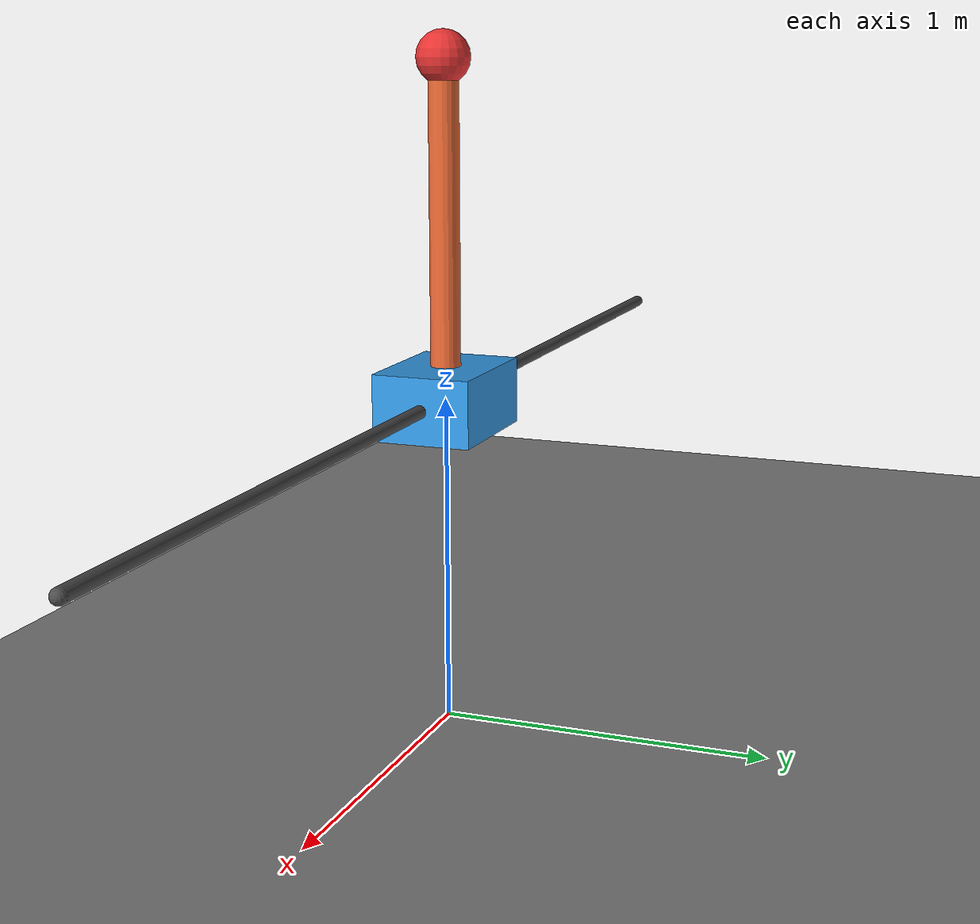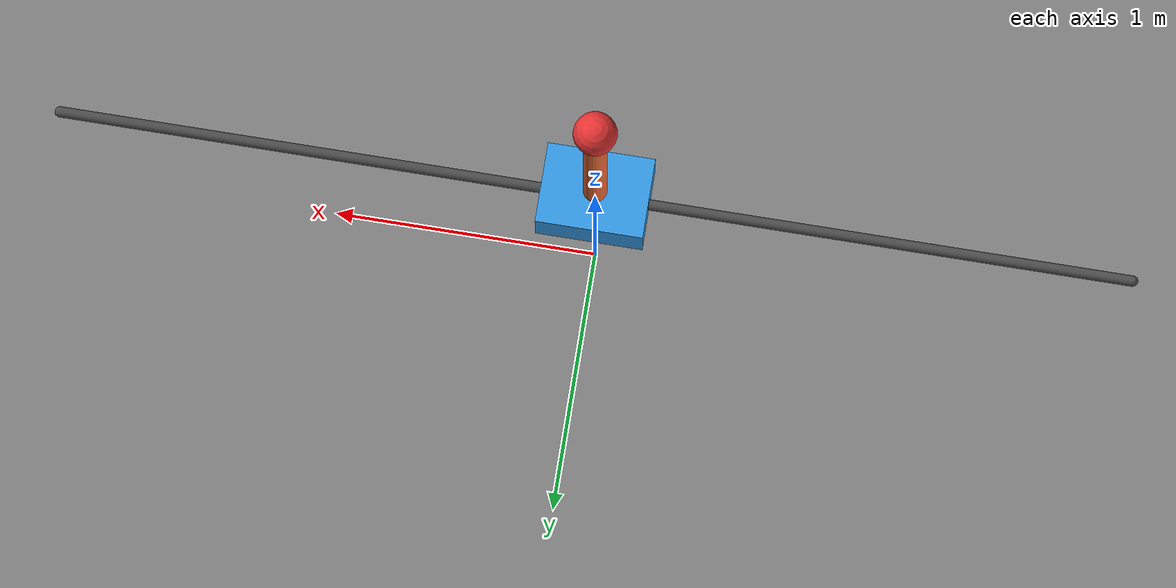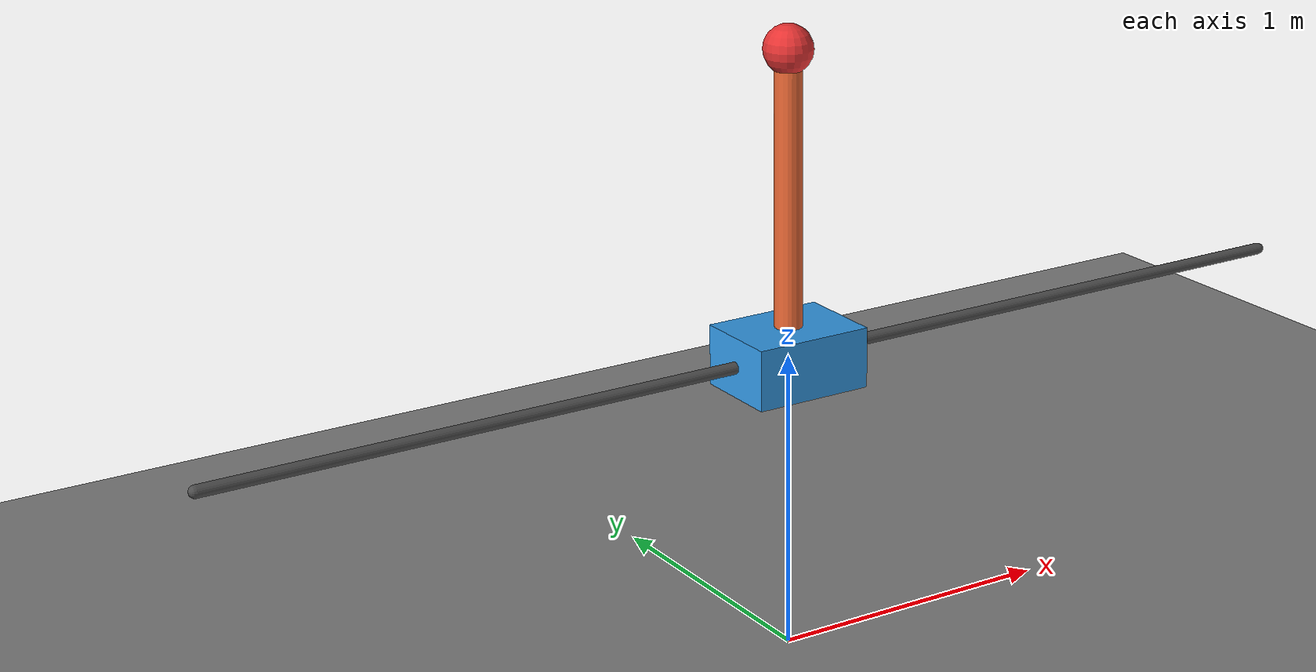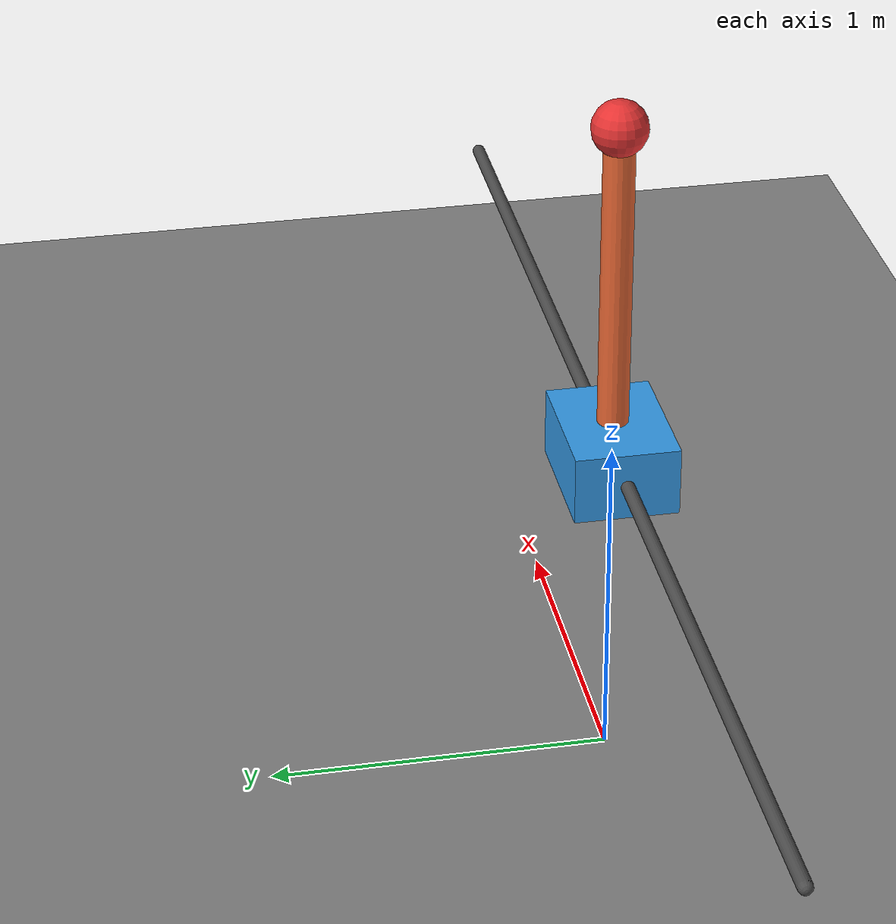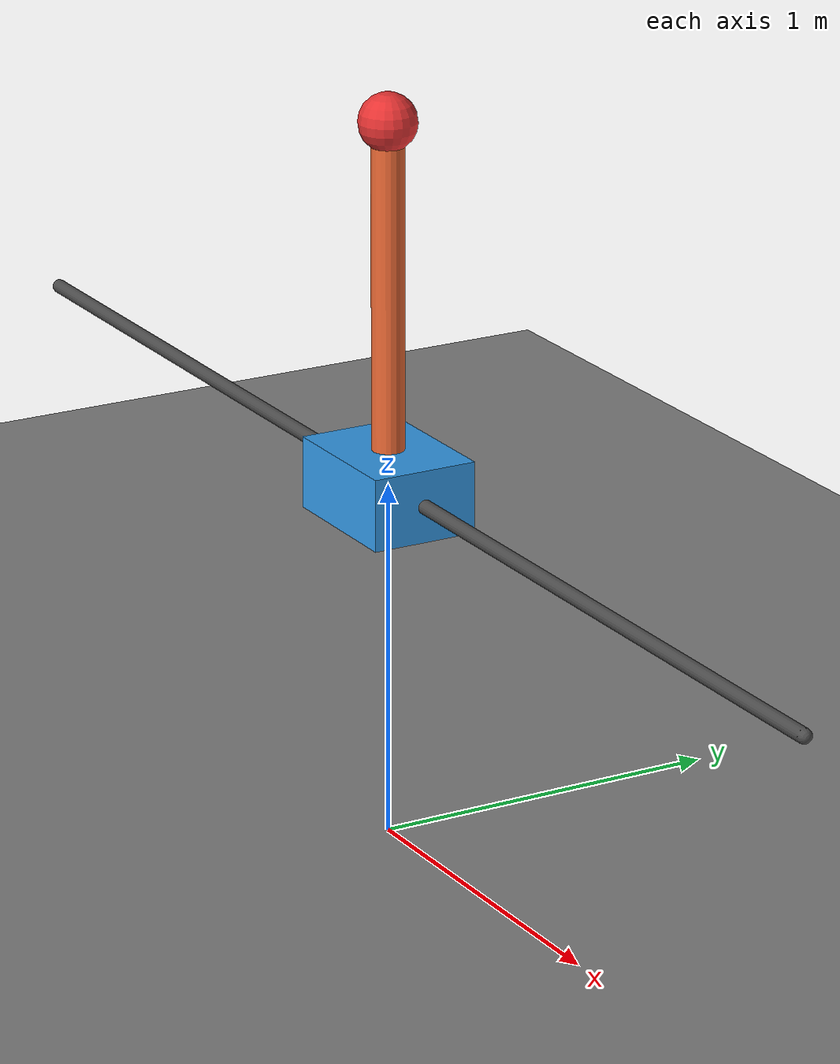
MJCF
<mujoco model="cartpole">
  <!-- Classic cartpole/inverted pendulum model -->
  <compiler angle="radian" inertiafromgeom="true"/>

  <option timestep="0.01" integrator="RK4"/>

  <default>
    <joint damping="0.05"/>
    <geom contype="0" friction="1 0.1 0.1" rgba="0.7 0.7 0.7 1"/>
  </default>

  <worldbody>
    <!-- Ground -->
    <geom name="floor" type="plane" pos="0 0 0" size="5 5 0.1" rgba="0.5 0.5 0.5 1"/>

    <!-- Rail -->
    <geom name="rail" type="capsule" fromto="-2 0 1 2 0 1" size="0.02" rgba="0.3 0.3 0.3 1"/>

    <!-- Cart -->
    <body name="cart" pos="0 0 1">
      <joint name="slider" type="slide" axis="1 0 0" limited="true" range="-2 2"/>
      <geom name="cart_geom" type="box" size="0.2 0.15 0.1" rgba="0.2 0.6 0.9 1" mass="1"/>

      <!-- Pole -->
      <body name="pole" pos="0 0 0">
        <joint name="hinge" type="hinge" axis="0 1 0" limited="false"/>
        <geom name="pole_geom" type="capsule" fromto="0 0 0 0 0 1" size="0.045" rgba="0.9 0.4 0.2 1" mass="0.1"/>
        <geom name="pole_tip" type="sphere" pos="0 0 1" size="0.08" rgba="0.9 0.2 0.2 1" mass="0.05"/>
      </body>
    </body>
  </worldbody>

  <actuator>
    <motor name="slide" joint="slider" gear="100" ctrllimited="true" ctrlrange="-50 50"/>
  </actuator>

  <sensor>
    <jointpos name="cart_position" joint="slider"/>
    <jointvel name="cart_velocity" joint="slider"/>
    <jointpos name="pole_angle" joint="hinge"/>
    <jointvel name="pole_angular_velocity" joint="hinge"/>
  </sensor>
</mujoco>
